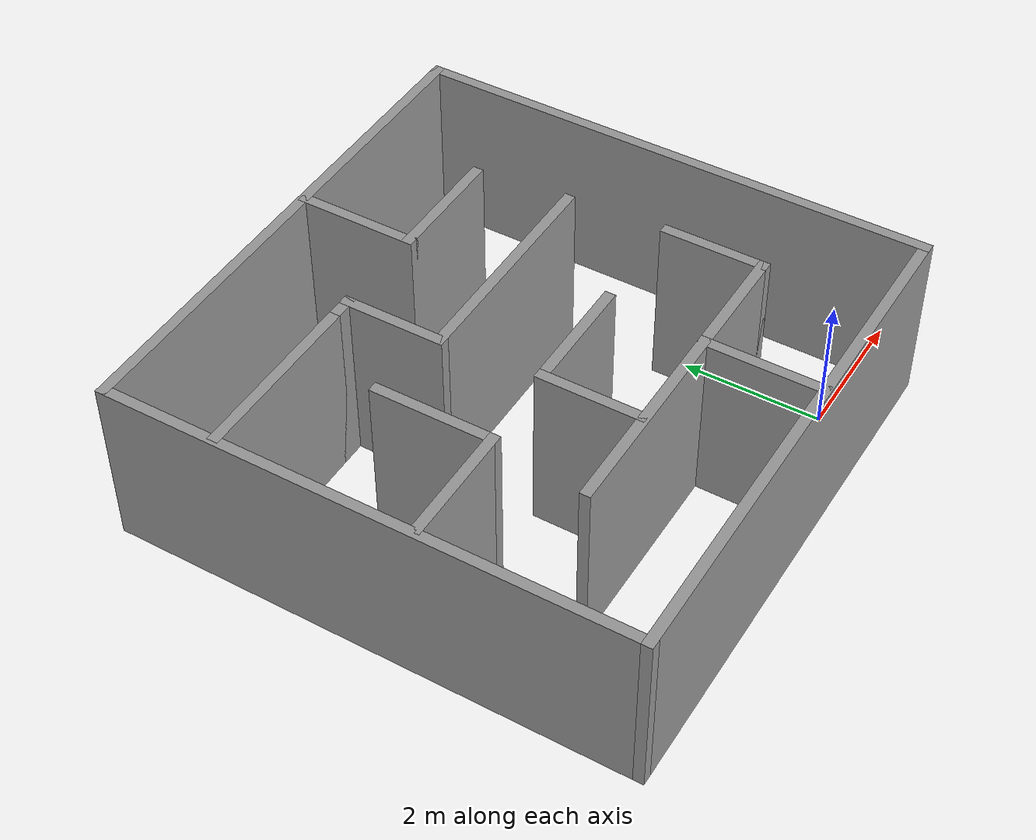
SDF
<?xml version='1.0'?>
<sdf version='1.7'>
  <model name='Maze2'>
    <pose>-2.5287 2.99139 0 0 -0 0</pose>
    <link name='Wall_10'>
      <collision name='Wall_10_Collision'>
        <geometry>
          <box>
            <size>1.75 0.15 2.5</size>
          </box>
        </geometry>
        <pose>0 0 1.25 0 -0 0</pose>
      </collision>
      <visual name='Wall_10_Visual'>
        <pose>0 0 1.25 0 -0 0</pose>
        <geometry>
          <box>
            <size>1.75 0.15 2.5</size>
          </box>
        </geometry>
        <material>
          <script>
            <uri>file://media/materials/scripts/gazebo.material</uri>
            <name>Gazebo/Grey</name>
          </script>
          <ambient>1 1 1 1</ambient>
        </material>
        <meta>
          <layer>0</layer>
        </meta>
      </visual>
      <pose>1.23846 2.04144 0 0 -0 0</pose>
    </link>
    <link name='Wall_12'>
      <collision name='Wall_12_Collision'>
        <geometry>
          <box>
            <size>1.75 0.15 2.5</size>
          </box>
        </geometry>
        <pose>0 0 1.25 0 -0 0</pose>
      </collision>
      <visual name='Wall_12_Visual'>
        <pose>0 0 1.25 0 -0 0</pose>
        <geometry>
          <box>
            <size>1.75 0.15 2.5</size>
          </box>
        </geometry>
        <material>
          <script>
            <uri>file://media/materials/scripts/gazebo.material</uri>
            <name>Gazebo/Grey</name>
          </script>
          <ambient>1 1 1 1</ambient>
        </material>
        <meta>
          <layer>0</layer>
        </meta>
      </visual>
      <pose>0.700811 -2.85192 0 0 -0 1.5708</pose>
    </link>
    <link name='Wall_13'>
      <collision name='Wall_13_Collision'>
        <geometry>
          <box>
            <size>1.75 0.15 2.5</size>
          </box>
        </geometry>
        <pose>0 0 1.25 0 -0 0</pose>
      </collision>
      <visual name='Wall_13_Visual'>
        <pose>0 0 1.25 0 -0 0</pose>
        <geometry>
          <box>
            <size>1.75 0.15 2.5</size>
          </box>
        </geometry>
        <material>
          <script>
            <uri>file://media/materials/scripts/gazebo.material</uri>
            <name>Gazebo/Grey</name>
          </script>
          <ambient>1 1 1 1</ambient>
        </material>
        <meta>
          <layer>0</layer>
        </meta>
      </visual>
      <pose>1.50081 -2.05192 0 0 -0 0</pose>
    </link>
    <link name='Wall_14'>
      <collision name='Wall_14_Collision'>
        <geometry>
          <box>
            <size>1.5 0.15 2.5</size>
          </box>
        </geometry>
        <pose>0 0 1.25 0 -0 0</pose>
      </collision>
      <visual name='Wall_14_Visual'>
        <pose>0 0 1.25 0 -0 0</pose>
        <geometry>
          <box>
            <size>1.5 0.15 2.5</size>
          </box>
        </geometry>
        <material>
          <script>
            <uri>file://media/materials/scripts/gazebo.material</uri>
            <name>Gazebo/Grey</name>
          </script>
          <ambient>1 1 1 1</ambient>
        </material>
        <meta>
          <layer>0</layer>
        </meta>
      </visual>
      <pose>2.30081 -1.37692 0 0 -0 1.5708</pose>
    </link>
    <link name='Wall_16'>
      <collision name='Wall_16_Collision'>
        <geometry>
          <box>
            <size>3 0.15 2.5</size>
          </box>
        </geometry>
        <pose>0 0 1.25 0 -0 0</pose>
      </collision>
      <visual name='Wall_16_Visual'>
        <pose>0 0 1.25 0 -0 0</pose>
        <geometry>
          <box>
            <size>3 0.15 2.5</size>
          </box>
        </geometry>
        <material>
          <script>
            <uri>file://media/materials/scripts/gazebo.material</uri>
            <name>Gazebo/Grey</name>
          </script>
          <ambient>1 1 1 1</ambient>
        </material>
        <meta>
          <layer>0</layer>
        </meta>
      </visual>
      <pose>-0.724189 -2.05192 0 0 -0 3.14159</pose>
    </link>
    <link name='Wall_18'>
      <collision name='Wall_18_Collision'>
        <geometry>
          <box>
            <size>1.5 0.15 2.5</size>
          </box>
        </geometry>
        <pose>0 0 1.25 0 -0 0</pose>
      </collision>
      <visual name='Wall_18_Visual'>
        <pose>0 0 1.25 0 -0 0</pose>
        <geometry>
          <box>
            <size>1.5 0.15 2.5</size>
          </box>
        </geometry>
        <material>
          <script>
            <uri>file://media/materials/scripts/gazebo.material</uri>
            <name>Gazebo/Grey</name>
          </script>
          <ambient>1 1 1 1</ambient>
        </material>
        <meta>
          <layer>0</layer>
        </meta>
      </visual>
      <pose>-0.803334 -1.33285 0 0 -0 1.5708</pose>
    </link>
    <link name='Wall_19'>
      <collision name='Wall_19_Collision'>
        <geometry>
          <box>
            <size>1.75 0.15 2.5</size>
          </box>
        </geometry>
        <pose>0 0 1.25 0 -0 0</pose>
      </collision>
      <visual name='Wall_19_Visual'>
        <pose>0 0 1.25 0 -0 0</pose>
        <geometry>
          <box>
            <size>1.75 0.15 2.5</size>
          </box>
        </geometry>
        <material>
          <script>
            <uri>file://media/materials/scripts/gazebo.material</uri>
            <name>Gazebo/Grey</name>
          </script>
          <ambient>1 1 1 1</ambient>
        </material>
        <meta>
          <layer>0</layer>
        </meta>
      </visual>
      <pose>-0.003334 -0.65785 0 0 -0 0</pose>
    </link>
    <link name='Wall_21'>
      <collision name='Wall_21_Collision'>
        <geometry>
          <box>
            <size>1.75 0.15 2.5</size>
          </box>
        </geometry>
        <pose>0 0 1.25 0 -0 0</pose>
      </collision>
      <visual name='Wall_21_Visual'>
        <pose>0 0 1.25 0 -0 0</pose>
        <geometry>
          <box>
            <size>1.75 0.15 2.5</size>
          </box>
        </geometry>
        <material>
          <script>
            <uri>file://media/materials/scripts/gazebo.material</uri>
            <name>Gazebo/Grey</name>
          </script>
          <ambient>1 1 1 1</ambient>
        </material>
        <meta>
          <layer>0</layer>
        </meta>
      </visual>
      <pose>-2.80174 -0.696095 0 0 -0 0</pose>
    </link>
    <link name='Wall_22'>
      <collision name='Wall_22_Collision'>
        <geometry>
          <box>
            <size>1.75 0.15 2.5</size>
          </box>
        </geometry>
        <pose>0 0 1.25 0 -0 0</pose>
      </collision>
      <visual name='Wall_22_Visual'>
        <pose>0 0 1.25 0 -0 0</pose>
        <geometry>
          <box>
            <size>1.75 0.15 2.5</size>
          </box>
        </geometry>
        <material>
          <script>
            <uri>file://media/materials/scripts/gazebo.material</uri>
            <name>Gazebo/Grey</name>
          </script>
          <ambient>1 1 1 1</ambient>
        </material>
        <meta>
          <layer>0</layer>
        </meta>
      </visual>
      <pose>-2.00174 0.103904 0 0 -0 1.5708</pose>
    </link>
    <link name='Wall_25'>
      <collision name='Wall_25_Collision'>
        <geometry>
          <box>
            <size>2.5 0.15 2.5</size>
          </box>
        </geometry>
        <pose>0 0 1.25 0 -0 0</pose>
      </collision>
      <visual name='Wall_25_Visual'>
        <pose>0 0 1.25 0 -0 0</pose>
        <geometry>
          <box>
            <size>2.5 0.15 2.5</size>
          </box>
        </geometry>
        <material>
          <script>
            <uri>file://media/materials/scripts/gazebo.material</uri>
            <name>Gazebo/Grey</name>
          </script>
          <ambient>1 1 1 1</ambient>
        </material>
        <meta>
          <layer>0</layer>
        </meta>
      </visual>
      <pose>-2.44423 2.06733 0 0 -0 0</pose>
    </link>
    <link name='Wall_26'>
      <collision name='Wall_26_Collision'>
        <geometry>
          <box>
            <size>0.5 0.15 2.5</size>
          </box>
        </geometry>
        <pose>0 0 1.25 0 -0 0</pose>
      </collision>
      <visual name='Wall_26_Visual'>
        <pose>0 0 1.25 0 -0 0</pose>
        <geometry>
          <box>
            <size>0.5 0.15 2.5</size>
          </box>
        </geometry>
        <material>
          <script>
            <uri>file://media/materials/scripts/gazebo.material</uri>
            <name>Gazebo/Grey</name>
          </script>
          <ambient>1 1 1 1</ambient>
        </material>
        <meta>
          <layer>0</layer>
        </meta>
      </visual>
      <pose>-1.09423 2.06733 0 0 -0 0</pose>
    </link>
    <link name='Wall_27'>
      <collision name='Wall_27_Collision'>
        <geometry>
          <box>
            <size>1.5 0.15 2.5</size>
          </box>
        </geometry>
        <pose>0 0 1.25 0 -0 0</pose>
      </collision>
      <visual name='Wall_27_Visual'>
        <pose>0 0 1.25 0 -0 0</pose>
        <geometry>
          <box>
            <size>1.5 0.15 2.5</size>
          </box>
        </geometry>
        <material>
          <script>
            <uri>file://media/materials/scripts/gazebo.material</uri>
            <name>Gazebo/Grey</name>
          </script>
          <ambient>1 1 1 1</ambient>
        </material>
        <meta>
          <layer>0</layer>
        </meta>
      </visual>
      <pose>-0.919234 1.39233 0 0 -0 -1.5708</pose>
    </link>
    <link name='Wall_28'>
      <collision name='Wall_28_Collision'>
        <geometry>
          <box>
            <size>3.25 0.15 2.5</size>
          </box>
        </geometry>
        <pose>0 0 1.25 0 -0 0</pose>
      </collision>
      <visual name='Wall_28_Visual'>
        <pose>0 0 1.25 0 -0 0</pose>
        <geometry>
          <box>
            <size>3.25 0.15 2.5</size>
          </box>
        </geometry>
        <material>
          <script>
            <uri>file://media/materials/scripts/gazebo.material</uri>
            <name>Gazebo/Grey</name>
          </script>
          <ambient>1 1 1 1</ambient>
        </material>
        <meta>
          <layer>0</layer>
        </meta>
      </visual>
      <pose>0.630766 0.717334 0 0 -0 0</pose>
    </link>
    <link name='Wall_3'>
      <collision name='Wall_3_Collision'>
        <geometry>
          <box>
            <size>7.5 0.15 2.5</size>
          </box>
        </geometry>
        <pose>0 0 1.25 0 -0 0</pose>
      </collision>
      <visual name='Wall_3_Visual'>
        <pose>0 0 1.25 0 -0 0</pose>
        <geometry>
          <box>
            <size>7.5 0.15 2.5</size>
          </box>
        </geometry>
        <material>
          <script>
            <uri>file://media/materials/scripts/gazebo.material</uri>
            <name>Gazebo/Grey</name>
          </script>
          <ambient>1 1 1 1</ambient>
        </material>
        <meta>
          <layer>0</layer>
        </meta>
      </visual>
      <pose>0 3.675 0 0 -0 0</pose>
    </link>
    <link name='Wall_4'>
      <collision name='Wall_4_Collision'>
        <geometry>
          <box>
            <size>7.5 0.15 2.5</size>
          </box>
        </geometry>
        <pose>0 0 1.25 0 -0 0</pose>
      </collision>
      <visual name='Wall_4_Visual'>
        <pose>0 0 1.25 0 -0 0</pose>
        <geometry>
          <box>
            <size>7.5 0.15 2.5</size>
          </box>
        </geometry>
        <material>
          <script>
            <uri>file://media/materials/scripts/gazebo.material</uri>
            <name>Gazebo/Grey</name>
          </script>
          <ambient>1 1 1 1</ambient>
        </material>
        <meta>
          <layer>0</layer>
        </meta>
      </visual>
      <pose>3.675 0 0 0 -0 -1.5708</pose>
    </link>
    <link name='Wall_5'>
      <collision name='Wall_5_Collision'>
        <geometry>
          <box>
            <size>7.5 0.15 2.5</size>
          </box>
        </geometry>
        <pose>0 0 1.25 0 -0 0</pose>
      </collision>
      <visual name='Wall_5_Visual'>
        <pose>0 0 1.25 0 -0 0</pose>
        <geometry>
          <box>
            <size>7.5 0.15 2.5</size>
          </box>
        </geometry>
        <material>
          <script>
            <uri>file://media/materials/scripts/gazebo.material</uri>
            <name>Gazebo/Grey</name>
          </script>
          <ambient>1 1 1 1</ambient>
        </material>
        <meta>
          <layer>0</layer>
        </meta>
      </visual>
      <pose>0 -3.675 0 0 -0 3.14159</pose>
    </link>
    <link name='Wall_6'>
      <collision name='Wall_6_Collision'>
        <geometry>
          <box>
            <size>7.5 0.15 2.5</size>
          </box>
        </geometry>
        <pose>0 0 1.25 0 -0 0</pose>
      </collision>
      <visual name='Wall_6_Visual'>
        <pose>0 0 1.25 0 -0 0</pose>
        <geometry>
          <box>
            <size>7.5 0.15 2.5</size>
          </box>
        </geometry>
        <material>
          <script>
            <uri>file://media/materials/scripts/gazebo.material</uri>
            <name>Gazebo/Grey</name>
          </script>
          <ambient>1 1 1 1</ambient>
        </material>
        <meta>
          <layer>0</layer>
        </meta>
      </visual>
      <pose>-3.675 0 0 0 -0 1.5708</pose>
    </link>
    <link name='Wall_9'>
      <collision name='Wall_9_Collision'>
        <geometry>
          <box>
            <size>1.75 0.15 2.5</size>
          </box>
        </geometry>
        <pose>0 0 1.25 0 -0 0</pose>
      </collision>
      <visual name='Wall_9_Visual'>
        <pose>0 0 1.25 0 -0 0</pose>
        <geometry>
          <box>
            <size>1.75 0.15 2.5</size>
          </box>
        </geometry>
        <material>
          <script>
            <uri>file://media/materials/scripts/gazebo.material</uri>
            <name>Gazebo/Grey</name>
          </script>
          <ambient>1 1 1 1</ambient>
        </material>
        <meta>
          <layer>0</layer>
        </meta>
      </visual>
      <pose>0.43846 2.84144 0 0 -0 -1.5708</pose>
    </link>
    <static>1</static>
  </model>
</sdf>
